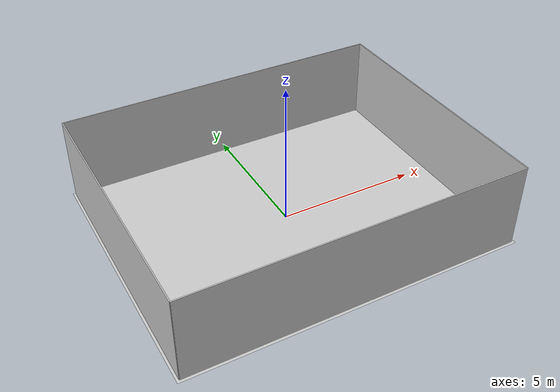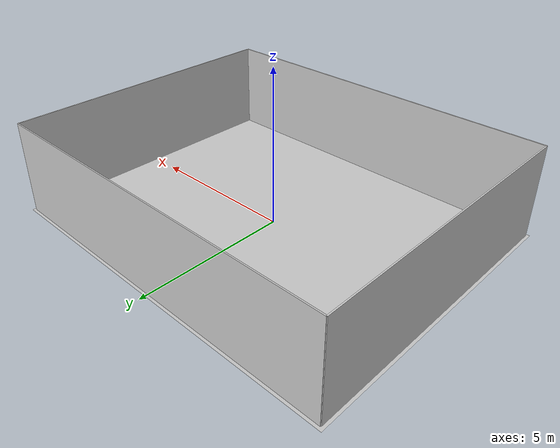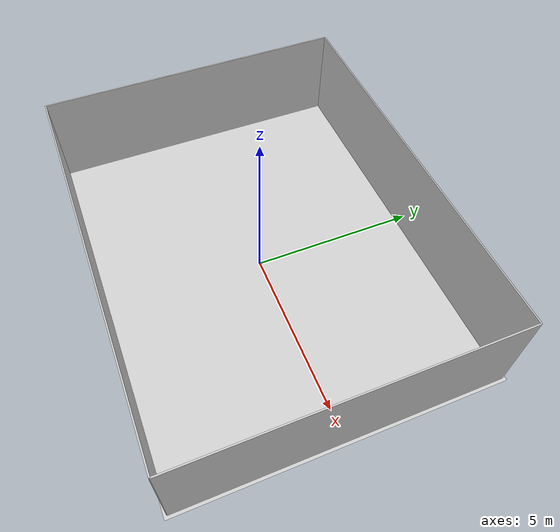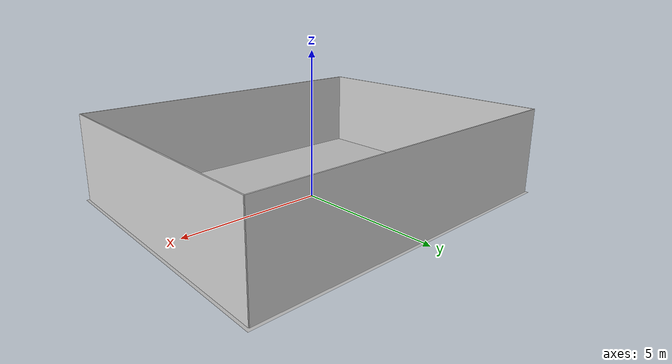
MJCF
<mujoco model="empty_arena">
  <asset>
    <texture builtin="gradient" height="256" rgb1=".9 .9 1." rgb2=".2 .3 .4" type="skybox" width="256"/>
    <texture file="../textures/light-gray-floor-tile.png" type="2d" name="texplane"/>
    <material name="floorplane" reflectance="0.01" shininess="0.0" specular="0.0" texrepeat="2 2" texture="texplane" texuniform="true"/>
    <!-- plaster walls -->
    <texture file="../textures/light-gray-plaster.png" type="2d" name="tex-light-gray-plaster"/>
    <material name="walls_mat" reflectance="0.0" shininess="0.1" specular="0.1" texrepeat="3 3" texture="tex-light-gray-plaster" texuniform="true" />

  </asset>
  <worldbody>
    <!-- Floor -->
    <geom condim="3" group="1" material="floorplane" name="floor"
          pos="0 0 0" size="6.0 4.8 .125" type="plane"/>

    <!-- Four rectangular factory walls, visual only -->
    <geom name="wall_x_min_visual"
          type="box"
          pos="-5.9 0 1.5"
          size="0.02 4.7 1.5"
          material="walls_mat"
          conaffinity="0"
          contype="0"
          group="1"/>

    <geom name="wall_x_max_visual"
          type="box"
          pos="5.9 0 1.5"
          size="0.02 4.7 1.5"
          material="walls_mat"
          conaffinity="0"
          contype="0"
          group="1"/>

    <geom name="wall_y_min_visual"
          type="box"
          pos="0 -4.7 1.5"
          size="5.9 0.02 1.5"
          material="walls_mat"
          conaffinity="0"
          contype="0"
          group="1"/>

    <geom name="wall_y_max_visual"
          type="box"
          pos="0 4.7 1.5"
          size="5.9 0.02 1.5"
          material="walls_mat"
          conaffinity="0"
          contype="0"
          group="1"/>
    <light pos="1.0 1.0 1.5" dir="-0.2 -0.2 -1" specular="0.3 0.3 0.3" directional="true" castshadow="false"/>
    <!-- front view -->
    <camera mode="fixed" name="frontview" pos="5.8 -5.0 3.2" quat="0.508 0.320 0.424 0.680"/>
    <!-- bird view -->
    <camera mode="fixed" name="birdview" pos="0 0 8.8" quat="0.7071 0 0 0.7071"/>
    <!-- agent view -->
    <camera mode="fixed" name="agentview" pos="2.5 -3.2 2.2" quat="0.621 0.364 0.386 0.577"/>
    <!-- side view -->
    <camera mode="fixed" name="sideview" pos="-0.05651774593317116 1.2761224129427358 1.4879572214102434" quat="0.009905065491771751 0.006877963156909582 0.5912228352893879 0.806418094001364" />
  </worldbody>
</mujoco>
